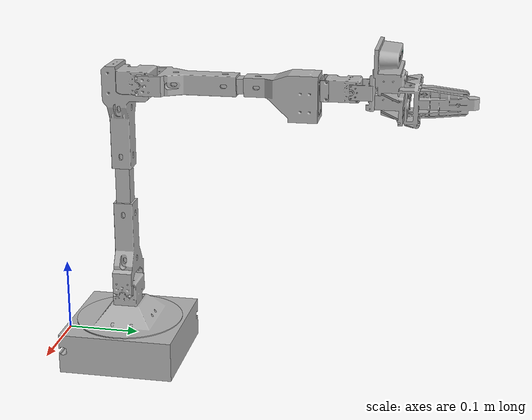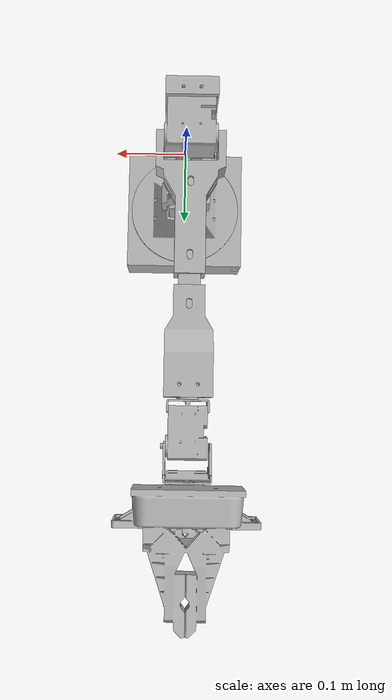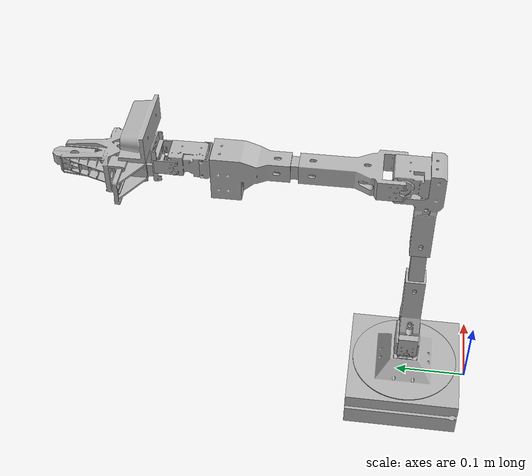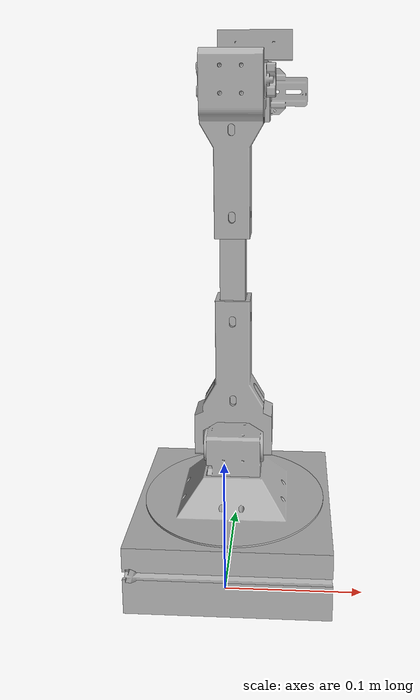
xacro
<?xml version="1.0" ?>
<robot name="omxa" xmlns:xacro="http://www.ros.org/wiki/xacro">

<xacro:include filename="$(find omxa_description)/urdf/materials.xacro" />
<xacro:include filename="$(find omxa_description)/urdf/omxa.trans" />
<xacro:include filename="$(find omxa_description)/urdf/omxa.gazebo" />
<link name="base_link">
  <inertial>
    <origin xyz="0.0011452354851243316 0.09257922396155326 -0.009546902704709322" rpy="0 0 0"/>
    <mass value="8.144455453724765"/>
    <inertia ixx="0.021161" iyy="0.021509" izz="0.038923" ixy="-2.1e-05" iyz="-0.000101" ixz="-8.3e-05"/>
  </inertial>
  <visual>
    <origin xyz="0 0 0" rpy="0 0 0"/>
    <geometry>
      <mesh filename="package://omxa_description/meshes/base_link.stl" scale="0.001 0.001 0.001"/>
    </geometry>
    <material name="silver"/>
  </visual>
  <collision>
    <origin xyz="0 0 0" rpy="0 0 0"/>
    <geometry>
      <mesh filename="package://omxa_description/meshes/base_link.stl" scale="0.001 0.001 0.001"/>
    </geometry>
  </collision>
</link>

<link name="J1_1">
  <inertial>
    <origin xyz="-1.9633230930646508e-13 -0.015028162831385208 -0.02131843142453122" rpy="0 0 0"/>
    <mass value="0.6640277986417521"/>
    <inertia ixx="0.000301" iyy="0.000169" izz="0.000249" ixy="0.0" iyz="-1e-06" ixz="-0.0"/>
  </inertial>
  <visual>
    <origin xyz="-0.0 -0.090078 -0.01438" rpy="0 0 0"/>
    <geometry>
      <mesh filename="package://omxa_description/meshes/J1_1.stl" scale="0.001 0.001 0.001"/>
    </geometry>
    <material name="silver"/>
  </visual>
  <collision>
    <origin xyz="-0.0 -0.090078 -0.01438" rpy="0 0 0"/>
    <geometry>
      <mesh filename="package://omxa_description/meshes/J1_1.stl" scale="0.001 0.001 0.001"/>
    </geometry>
  </collision>
</link>

<link name="brk1_1">
  <inertial>
    <origin xyz="1.936679983050027e-15 4.225777640309847e-07 0.0075757529306429705" rpy="0 0 0"/>
    <mass value="1.495487199833467"/>
    <inertia ixx="0.001602" iyy="0.001644" izz="0.003068" ixy="-0.0" iyz="0.0" ixz="0.0"/>
  </inertial>
  <visual>
    <origin xyz="-0.0 -0.090078 -0.01688" rpy="0 0 0"/>
    <geometry>
      <mesh filename="package://omxa_description/meshes/brk1_1.stl" scale="0.001 0.001 0.001"/>
    </geometry>
    <material name="silver"/>
  </visual>
  <collision>
    <origin xyz="-0.0 -0.090078 -0.01688" rpy="0 0 0"/>
    <geometry>
      <mesh filename="package://omxa_description/meshes/brk1_1.stl" scale="0.001 0.001 0.001"/>
    </geometry>
  </collision>
</link>

<link name="J2_1">
  <inertial>
    <origin xyz="-0.0073666147801041805 0.0167283862690214 0.022971314919524508" rpy="0 0 0"/>
    <mass value="0.6640277986417521"/>
    <inertia ixx="0.000249" iyy="0.000301" izz="0.000169" ixy="-0.0" iyz="-0.0" ixz="-1e-06"/>
  </inertial>
  <visual>
    <origin xyz="-0.008049 -0.073102 -0.03103" rpy="0 0 0"/>
    <geometry>
      <mesh filename="package://omxa_description/meshes/J2_1.stl" scale="0.001 0.001 0.001"/>
    </geometry>
    <material name="silver"/>
  </visual>
  <collision>
    <origin xyz="-0.008049 -0.073102 -0.03103" rpy="0 0 0"/>
    <geometry>
      <mesh filename="package://omxa_description/meshes/J2_1.stl" scale="0.001 0.001 0.001"/>
    </geometry>
  </collision>
</link>

<link name="brk2_1">
  <inertial>
    <origin xyz="-0.024144418973271072 -6.90027333683646e-05 0.05506220993115714" rpy="0 0 0"/>
    <mass value="0.44910078476074017"/>
    <inertia ixx="0.000561" iyy="0.000656" izz="0.000169" ixy="-0.0" iyz="0.0" ixz="8e-06"/>
  </inertial>
  <visual>
    <origin xyz="-0.024501 -0.089899 -0.06903" rpy="0 0 0"/>
    <geometry>
      <mesh filename="package://omxa_description/meshes/brk2_1.stl" scale="0.001 0.001 0.001"/>
    </geometry>
    <material name="silver"/>
  </visual>
  <collision>
    <origin xyz="-0.024501 -0.089899 -0.06903" rpy="0 0 0"/>
    <geometry>
      <mesh filename="package://omxa_description/meshes/brk2_1.stl" scale="0.001 0.001 0.001"/>
    </geometry>
  </collision>
</link>

<link name="link240_1">
  <inertial>
    <origin xyz="-2.8020146134022284e-07 4.2361398389090255e-07 0.11999990032867379" rpy="0 0 0"/>
    <mass value="0.7535999999999999"/>
    <inertia ixx="0.003642" iyy="0.003642" izz="5e-05" ixy="-0.0" iyz="0.0" ixz="0.0"/>
  </inertial>
  <visual>
    <origin xyz="-1e-06 -0.089828 -0.10303" rpy="0 0 0"/>
    <geometry>
      <mesh filename="package://omxa_description/meshes/link240_1.stl" scale="0.001 0.001 0.001"/>
    </geometry>
    <material name="silver"/>
  </visual>
  <collision>
    <origin xyz="-1e-06 -0.089828 -0.10303" rpy="0 0 0"/>
    <geometry>
      <mesh filename="package://omxa_description/meshes/link240_1.stl" scale="0.001 0.001 0.001"/>
    </geometry>
  </collision>
</link>

<link name="brk3_1">
  <inertial>
    <origin xyz="3.755533271349994e-06 -0.0013985391773569666 -0.013927518759503155" rpy="0 0 0"/>
    <mass value="0.5086194556251544"/>
    <inertia ixx="0.000816" iyy="0.000816" izz="0.000186" ixy="0.0" iyz="5.1e-05" ixz="-0.0"/>
  </inertial>
  <visual>
    <origin xyz="-1e-06 -0.089828 -0.34303" rpy="0 0 0"/>
    <geometry>
      <mesh filename="package://omxa_description/meshes/brk3_1.stl" scale="0.001 0.001 0.001"/>
    </geometry>
    <material name="silver"/>
  </visual>
  <collision>
    <origin xyz="-1e-06 -0.089828 -0.34303" rpy="0 0 0"/>
    <geometry>
      <mesh filename="package://omxa_description/meshes/brk3_1.stl" scale="0.001 0.001 0.001"/>
    </geometry>
  </collision>
</link>

<link name="J3_1">
  <inertial>
    <origin xyz="-0.02139460082710719 0.02640959841858495 0.013499900328870218" rpy="0 0 0"/>
    <mass value="0.6640277986417521"/>
    <inertia ixx="0.000249" iyy="0.000169" izz="0.000301" ixy="-1e-06" iyz="-0.0" ixz="0.0"/>
  </inertial>
  <visual>
    <origin xyz="-0.022331 -0.079393 -0.35503" rpy="0 0 0"/>
    <geometry>
      <mesh filename="package://omxa_description/meshes/J3_1.stl" scale="0.001 0.001 0.001"/>
    </geometry>
    <material name="silver"/>
  </visual>
  <collision>
    <origin xyz="-0.022331 -0.079393 -0.35503" rpy="0 0 0"/>
    <geometry>
      <mesh filename="package://omxa_description/meshes/J3_1.stl" scale="0.001 0.001 0.001"/>
    </geometry>
  </collision>
</link>

<link name="brk4_1">
  <inertial>
    <origin xyz="-0.024291681062063773 0.056225837594128816 -6.704464566853474e-07" rpy="0 0 0"/>
    <mass value="0.43200889430043676"/>
    <inertia ixx="0.000542" iyy="0.000161" izz="0.000631" ixy="9e-06" iyz="-0.0" ixz="-0.0"/>
  </inertial>
  <visual>
    <origin xyz="-0.024711 -0.1209 -0.36853" rpy="0 0 0"/>
    <geometry>
      <mesh filename="package://omxa_description/meshes/brk4_1.stl" scale="0.001 0.001 0.001"/>
    </geometry>
    <material name="silver"/>
  </visual>
  <collision>
    <origin xyz="-0.024711 -0.1209 -0.36853" rpy="0 0 0"/>
    <geometry>
      <mesh filename="package://omxa_description/meshes/brk4_1.stl" scale="0.001 0.001 0.001"/>
    </geometry>
  </collision>
</link>

<link name="link160_1">
  <inertial>
    <origin xyz="-0.00023076459739294208 0.07999968636345664 -9.967132363897235e-08" rpy="0 0 0"/>
    <mass value="0.5024"/>
    <inertia ixx="0.001089" iyy="3.4e-05" izz="0.001089" ixy="3e-06" iyz="-0.0" ixz="0.0"/>
  </inertial>
  <visual>
    <origin xyz="-0.000114 -0.154829 -0.36853" rpy="0 0 0"/>
    <geometry>
      <mesh filename="package://omxa_description/meshes/link160_1.stl" scale="0.001 0.001 0.001"/>
    </geometry>
    <material name="silver"/>
  </visual>
  <collision>
    <origin xyz="-0.000114 -0.154829 -0.36853" rpy="0 0 0"/>
    <geometry>
      <mesh filename="package://omxa_description/meshes/link160_1.stl" scale="0.001 0.001 0.001"/>
    </geometry>
  </collision>
</link>

<link name="brk5_1">
  <inertial>
    <origin xyz="0.00015735758047681736 0.0076497148715573005 -0.0073365423310065014" rpy="0 0 0"/>
    <mass value="0.6812840660137512"/>
    <inertia ixx="0.000581" iyy="0.000361" izz="0.000482" ixy="2e-06" iyz="5.7e-05" ixz="2e-06"/>
  </inertial>
  <visual>
    <origin xyz="0.000347 -0.314828 -0.36853" rpy="0 0 0"/>
    <geometry>
      <mesh filename="package://omxa_description/meshes/brk5_1.stl" scale="0.001 0.001 0.001"/>
    </geometry>
    <material name="silver"/>
  </visual>
  <collision>
    <origin xyz="0.000347 -0.314828 -0.36853" rpy="0 0 0"/>
    <geometry>
      <mesh filename="package://omxa_description/meshes/brk5_1.stl" scale="0.001 0.001 0.001"/>
    </geometry>
  </collision>
</link>

<link name="J4_1">
  <inertial>
    <origin xyz="4.746945249718156e-05 -0.016606653380620617 0.0003833811683018884" rpy="0 0 0"/>
    <mass value="0.34460384683878587"/>
    <inertia ixx="9.5e-05" iyy="8.3e-05" izz="5.6e-05" ixy="0.0" iyz="-0.0" ixz="0.0"/>
  </inertial>
  <visual>
    <origin xyz="0.000472 -0.358328 -0.35703" rpy="0 0 0"/>
    <geometry>
      <mesh filename="package://omxa_description/meshes/J4_1.stl" scale="0.001 0.001 0.001"/>
    </geometry>
    <material name="silver"/>
  </visual>
  <collision>
    <origin xyz="0.000472 -0.358328 -0.35703" rpy="0 0 0"/>
    <geometry>
      <mesh filename="package://omxa_description/meshes/J4_1.stl" scale="0.001 0.001 0.001"/>
    </geometry>
  </collision>
</link>

<link name="brk6_1">
  <inertial>
    <origin xyz="-8.13094238404533e-06 0.00278825370341923 -9.96713211964817e-08" rpy="0 0 0"/>
    <mass value="0.016309929358964557"/>
    <inertia ixx="1e-06" iyy="4e-06" izz="3e-06" ixy="-0.0" iyz="0.0" ixz="-0.0"/>
  </inertial>
  <visual>
    <origin xyz="0.000478 -0.360328 -0.36903" rpy="0 0 0"/>
    <geometry>
      <mesh filename="package://omxa_description/meshes/brk6_1.stl" scale="0.001 0.001 0.001"/>
    </geometry>
    <material name="silver"/>
  </visual>
  <collision>
    <origin xyz="0.000478 -0.360328 -0.36903" rpy="0 0 0"/>
    <geometry>
      <mesh filename="package://omxa_description/meshes/brk6_1.stl" scale="0.001 0.001 0.001"/>
    </geometry>
  </collision>
</link>

<link name="J5_1">
  <inertial>
    <origin xyz="-0.016131516036043035 0.020261447016861223 -0.011000099671324481" rpy="0 0 0"/>
    <mass value="0.3332451576100366"/>
    <inertia ixx="8.1e-05" iyy="5.3e-05" izz="9.3e-05" ixy="-1e-06" iyz="0.0" ixz="0.0"/>
  </inertial>
  <visual>
    <origin xyz="-0.016497 -0.368877 -0.38003" rpy="0 0 0"/>
    <geometry>
      <mesh filename="package://omxa_description/meshes/J5_1.stl" scale="0.001 0.001 0.001"/>
    </geometry>
    <material name="silver"/>
  </visual>
  <collision>
    <origin xyz="-0.016497 -0.368877 -0.38003" rpy="0 0 0"/>
    <geometry>
      <mesh filename="package://omxa_description/meshes/J5_1.stl" scale="0.001 0.001 0.001"/>
    </geometry>
  </collision>
</link>

<link name="brk7_1">
  <inertial>
    <origin xyz="-0.019058370959932864 0.02031871633619342 -9.967125758070239e-08" rpy="0 0 0"/>
    <mass value="0.03437095087140986"/>
    <inertia ixx="4e-06" iyy="1.1e-05" izz="1.2e-05" ixy="-0.0" iyz="0.0" ixz="0.0"/>
  </inertial>
  <visual>
    <origin xyz="-0.018405 -0.400883 -0.36903" rpy="0 0 0"/>
    <geometry>
      <mesh filename="package://omxa_description/meshes/brk7_1.stl" scale="0.001 0.001 0.001"/>
    </geometry>
    <material name="silver"/>
  </visual>
  <collision>
    <origin xyz="-0.018405 -0.400883 -0.36903" rpy="0 0 0"/>
    <geometry>
      <mesh filename="package://omxa_description/meshes/brk7_1.stl" scale="0.001 0.001 0.001"/>
    </geometry>
  </collision>
</link>

<link name="brk8_1">
  <inertial>
    <origin xyz="1.4316948635835361e-06 -0.00041671610960125616 -0.0006040226246480374" rpy="0 0 0"/>
    <mass value="0.0266624513680774"/>
    <inertia ixx="5e-06" iyy="1e-05" izz="6e-06" ixy="-0.0" iyz="-0.0" ixz="0.0"/>
  </inertial>
  <visual>
    <origin xyz="0.000677 -0.429328 -0.36903" rpy="0 0 0"/>
    <geometry>
      <mesh filename="package://omxa_description/meshes/brk8_1.stl" scale="0.001 0.001 0.001"/>
    </geometry>
    <material name="silver"/>
  </visual>
  <collision>
    <origin xyz="0.000677 -0.429328 -0.36903" rpy="0 0 0"/>
    <geometry>
      <mesh filename="package://omxa_description/meshes/brk8_1.stl" scale="0.001 0.001 0.001"/>
    </geometry>
  </collision>
</link>

<link name="gripper_1">
  <inertial>
    <origin xyz="-0.00013872017241288654 0.03485484544147888 0.021350730954225017" rpy="0 0 0"/>
    <mass value="1.708566448261926"/>
    <inertia ixx="0.002727" iyy="0.002064" izz="0.002268" ixy="1e-06" iyz="0.000721" ixz="-0.0"/>
  </inertial>
  <visual>
    <origin xyz="0.000681 -0.430828 -0.35703" rpy="0 0 0"/>
    <geometry>
      <mesh filename="package://omxa_description/meshes/gripper_1.stl" scale="0.001 0.001 0.001"/>
    </geometry>
    <material name="silver"/>
  </visual>
  <collision>
    <origin xyz="0.000681 -0.430828 -0.35703" rpy="0 0 0"/>
    <geometry>
      <mesh filename="package://omxa_description/meshes/gripper_1.stl" scale="0.001 0.001 0.001"/>
    </geometry>
  </collision>
</link>

<link name="brk9_1">
  <inertial>
    <origin xyz="1.4496764616576778e-07 1.183290801010095e-06 -9.967372094354943e-08" rpy="0 0 0"/>
    <mass value="6.165375582670236e-11"/>
    <inertia ixx="0.0" iyy="0.0" izz="0.0" ixy="-0.0" iyz="-0.0" ixz="0.0"/>
  </inertial>
  <visual>
    <origin xyz="0.001111 -0.562727 -0.35703" rpy="0 0 0"/>
    <geometry>
      <mesh filename="package://omxa_description/meshes/brk9_1.stl" scale="0.001 0.001 0.001"/>
    </geometry>
    <material name="silver"/>
  </visual>
  <collision>
    <origin xyz="0.001111 -0.562727 -0.35703" rpy="0 0 0"/>
    <geometry>
      <mesh filename="package://omxa_description/meshes/brk9_1.stl" scale="0.001 0.001 0.001"/>
    </geometry>
  </collision>
</link>

<joint name="Rigid1" type="fixed">
  <origin xyz="0.0 0.090078 0.01438" rpy="0 0 0"/>
  <parent link="base_link"/>
  <child link="J1_1"/>
</joint>

<joint name="Revolute1" type="revolute">
  <origin xyz="0.0 0.0 0.0025" rpy="0 0 0"/>
  <parent link="J1_1"/>
  <child link="brk1_1"/>
  <axis xyz="0.0 0.0 1.0"/>
  <limit upper="3.141593" lower="-3.141593" effort="100" velocity="100"/>
</joint>

<joint name="Rigid2" type="fixed">
  <origin xyz="0.008049 -0.016976 0.01415" rpy="0 0 0"/>
  <parent link="brk1_1"/>
  <child link="J2_1"/>
</joint>

<joint name="Revolute2" type="revolute">
  <origin xyz="0.016452 0.016797 0.038" rpy="0 0 0"/>
  <parent link="J2_1"/>
  <child link="brk2_1"/>
  <axis xyz="0.999996 0.002879 -0.0"/>
  <limit upper="1.832596" lower="-1.832596" effort="100" velocity="100"/>
</joint>

<joint name="Rigid3" type="fixed">
  <origin xyz="-0.0245 -7.1e-05 0.034" rpy="0 0 0"/>
  <parent link="brk2_1"/>
  <child link="link240_1"/>
</joint>

<joint name="Rigid4" type="fixed">
  <origin xyz="0.0 0.0 0.24" rpy="0 0 0"/>
  <parent link="link240_1"/>
  <child link="brk3_1"/>
</joint>

<joint name="Rigid5" type="fixed">
  <origin xyz="0.02233 -0.010435 0.012" rpy="0 0 0"/>
  <parent link="brk3_1"/>
  <child link="J3_1"/>
</joint>

<joint name="Revolute3" type="revolute">
  <origin xyz="0.00238 0.041507 0.0135" rpy="0 0 0"/>
  <parent link="J3_1"/>
  <child link="brk4_1"/>
  <axis xyz="0.999996 0.002879 0.0"/>
  <limit upper="1.989675" lower="-1.48353" effort="100" velocity="100"/>
</joint>

<joint name="Rigid6" type="fixed">
  <origin xyz="-0.024597 0.033929 0.0" rpy="0 0 0"/>
  <parent link="brk4_1"/>
  <child link="link160_1"/>
</joint>

<joint name="Rigid7" type="fixed">
  <origin xyz="-0.000461 0.159999 0.0" rpy="0 0 0"/>
  <parent link="link160_1"/>
  <child link="brk5_1"/>
</joint>

<joint name="Rigid8" type="fixed">
  <origin xyz="-0.000125 0.0435 -0.0115" rpy="0 0 0"/>
  <parent link="brk5_1"/>
  <child link="J4_1"/>
</joint>

<joint name="Revolute4" type="revolute">
  <origin xyz="-6e-06 0.002 0.012" rpy="0 0 0"/>
  <parent link="J4_1"/>
  <child link="brk6_1"/>
  <axis xyz="0.002879 0.999996 0.0"/>
  <limit upper="3.141593" lower="-3.141593" effort="100" velocity="100"/>
</joint>

<joint name="Rigid9" type="fixed">
  <origin xyz="0.016975 0.008549 0.011" rpy="0 0 0"/>
  <parent link="brk6_1"/>
  <child link="J5_1"/>
</joint>

<joint name="Revolute5" type="revolute">
  <origin xyz="0.001908 0.032006 -0.011" rpy="0 0 0"/>
  <parent link="J5_1"/>
  <child link="brk7_1"/>
  <axis xyz="0.999996 0.002879 0.0"/>
  <limit upper="1.989675" lower="-1.989675" effort="100" velocity="100"/>
</joint>

<joint name="Rigid10" type="fixed">
  <origin xyz="-0.019082 0.028445 0.0" rpy="0 0 0"/>
  <parent link="brk7_1"/>
  <child link="brk8_1"/>
</joint>

<joint name="Rigid11" type="fixed">
  <origin xyz="-4e-06 0.0015 -0.012" rpy="0 0 0"/>
  <parent link="brk8_1"/>
  <child link="gripper_1"/>
</joint>

<joint name="Rigid12" type="fixed">
  <origin xyz="-0.00043 0.131899 0.0" rpy="0 0 0"/>
  <parent link="gripper_1"/>
  <child link="brk9_1"/>
</joint>

<link name="camera_link">
  <visual>
    <geometry>
      <sphere radius="0.005"/>
    </geometry>
  </visual>
</link>

<joint name="camera_mount_joint" type="fixed">
  <parent link="brk8_1"/>
  <child link="camera_link"/>
  <origin xyz="-0.03266 0.02736 0.0458" rpy="0 0 0"/>
</joint>

<link name="camera_color_optical_frame"/>

<joint name="camera_color_optical_joint" type="fixed">
  <parent link="camera_link"/>
  <child link="camera_color_optical_frame"/>
  <origin xyz="0 0 0" rpy="-1.5708 0 0"/>
</joint>

</robot>

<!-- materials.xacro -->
<robot name="omxa" xmlns:xacro="http://www.ros.org/wiki/xacro" >

<material name="silver">
  <color rgba="0.700 0.700 0.700 1.000"/>
</material>

</robot>

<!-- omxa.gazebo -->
<robot name="omxa" xmlns:xacro="http://www.ros.org/wiki/xacro" >

<xacro:property name="body_color" value="Gazebo/Silver" />

<gazebo>
  <plugin name="control" filename="libgazebo_ros_control.so"/>
</gazebo>
<gazebo reference="base_link">
  <material>${body_color}</material>
  <mu1>0.2</mu1>
  <mu2>0.2</mu2>
  <selfCollide>true</selfCollide>
  <gravity>true</gravity>
</gazebo>

<gazebo reference="J1_1">
  <material>${body_color}</material>
  <mu1>0.2</mu1>
  <mu2>0.2</mu2>
  <selfCollide>true</selfCollide>
</gazebo>

<gazebo reference="brk1_1">
  <material>${body_color}</material>
  <mu1>0.2</mu1>
  <mu2>0.2</mu2>
  <selfCollide>true</selfCollide>
</gazebo>

<gazebo reference="J2_1">
  <material>${body_color}</material>
  <mu1>0.2</mu1>
  <mu2>0.2</mu2>
  <selfCollide>true</selfCollide>
</gazebo>

<gazebo reference="brk2_1">
  <material>${body_color}</material>
  <mu1>0.2</mu1>
  <mu2>0.2</mu2>
  <selfCollide>true</selfCollide>
</gazebo>

<gazebo reference="link240_1">
  <material>${body_color}</material>
  <mu1>0.2</mu1>
  <mu2>0.2</mu2>
  <selfCollide>true</selfCollide>
</gazebo>

<gazebo reference="brk3_1">
  <material>${body_color}</material>
  <mu1>0.2</mu1>
  <mu2>0.2</mu2>
  <selfCollide>true</selfCollide>
</gazebo>

<gazebo reference="J3_1">
  <material>${body_color}</material>
  <mu1>0.2</mu1>
  <mu2>0.2</mu2>
  <selfCollide>true</selfCollide>
</gazebo>

<gazebo reference="brk4_1">
  <material>${body_color}</material>
  <mu1>0.2</mu1>
  <mu2>0.2</mu2>
  <selfCollide>true</selfCollide>
</gazebo>

<gazebo reference="link160_1">
  <material>${body_color}</material>
  <mu1>0.2</mu1>
  <mu2>0.2</mu2>
  <selfCollide>true</selfCollide>
</gazebo>

<gazebo reference="brk5_1">
  <material>${body_color}</material>
  <mu1>0.2</mu1>
  <mu2>0.2</mu2>
  <selfCollide>true</selfCollide>
</gazebo>

<gazebo reference="J4_1">
  <material>${body_color}</material>
  <mu1>0.2</mu1>
  <mu2>0.2</mu2>
  <selfCollide>true</selfCollide>
</gazebo>

<gazebo reference="brk6_1">
  <material>${body_color}</material>
  <mu1>0.2</mu1>
  <mu2>0.2</mu2>
  <selfCollide>true</selfCollide>
</gazebo>

<gazebo reference="J5_1">
  <material>${body_color}</material>
  <mu1>0.2</mu1>
  <mu2>0.2</mu2>
  <selfCollide>true</selfCollide>
</gazebo>

<gazebo reference="brk7_1">
  <material>${body_color}</material>
  <mu1>0.2</mu1>
  <mu2>0.2</mu2>
  <selfCollide>true</selfCollide>
</gazebo>

<gazebo reference="brk8_1">
  <material>${body_color}</material>
  <mu1>0.2</mu1>
  <mu2>0.2</mu2>
  <selfCollide>true</selfCollide>
</gazebo>

<gazebo reference="gripper_1">
  <material>${body_color}</material>
  <mu1>0.2</mu1>
  <mu2>0.2</mu2>
  <selfCollide>true</selfCollide>
</gazebo>

<gazebo reference="brk9_1">
  <material>${body_color}</material>
  <mu1>0.2</mu1>
  <mu2>0.2</mu2>
  <selfCollide>true</selfCollide>
</gazebo>

</robot>
